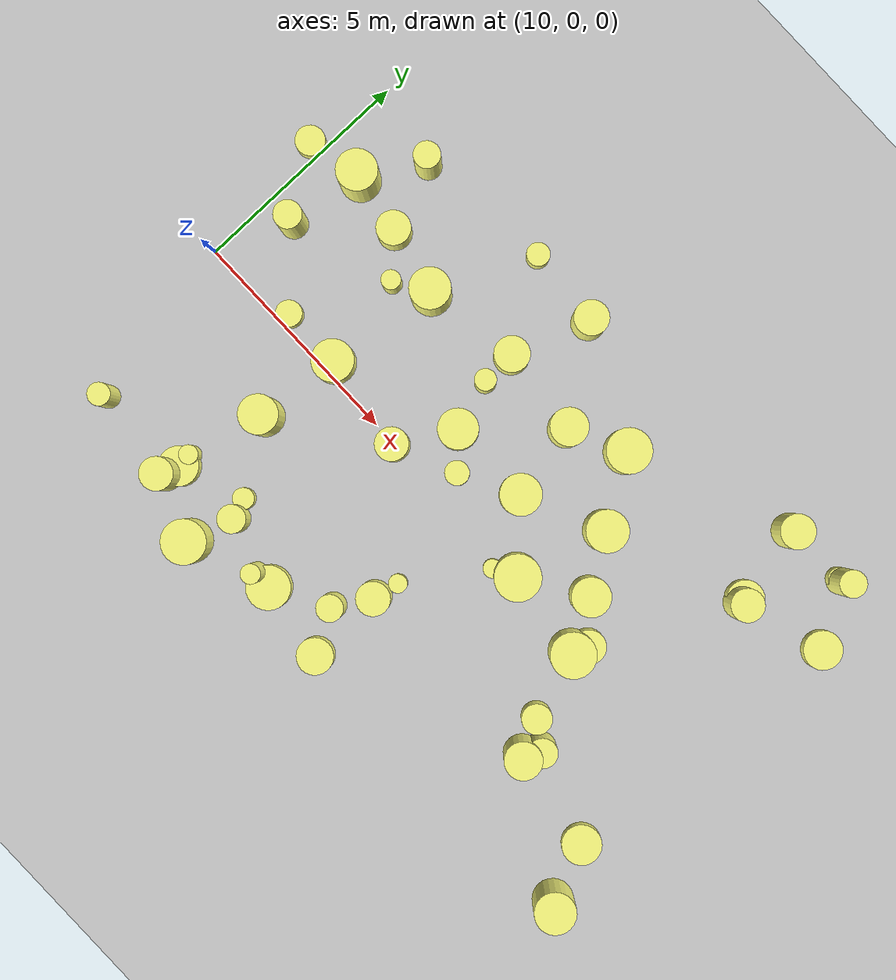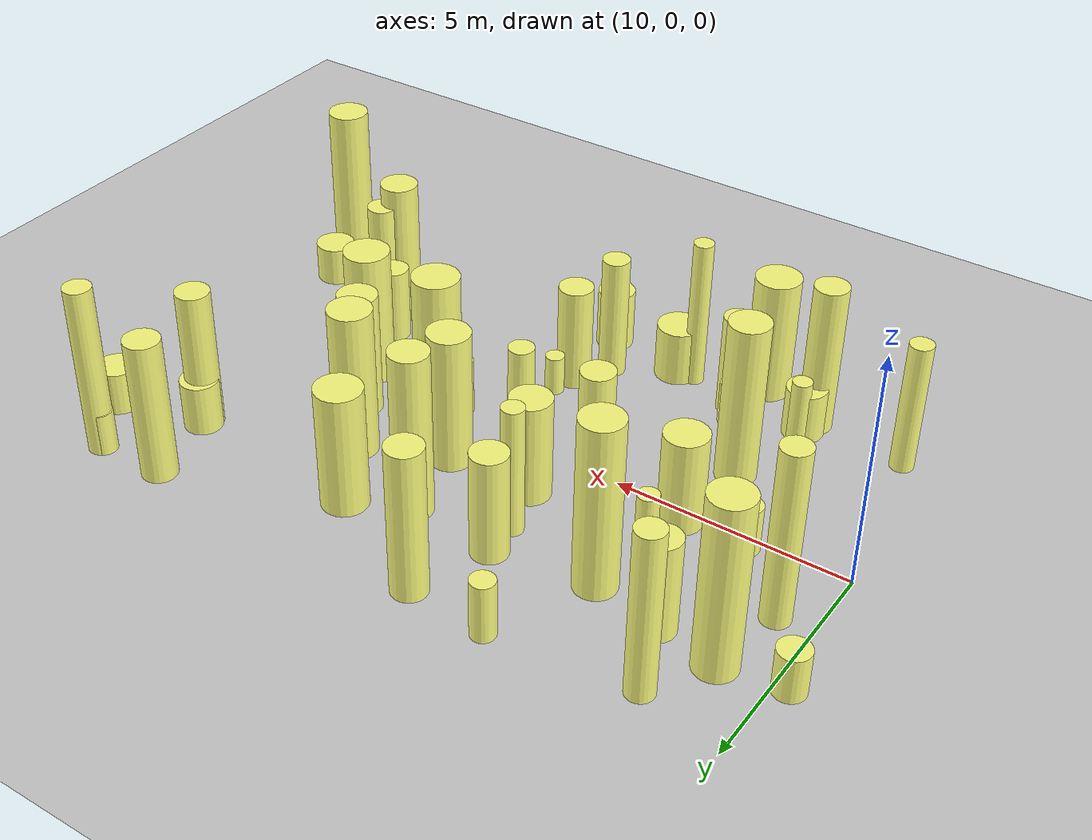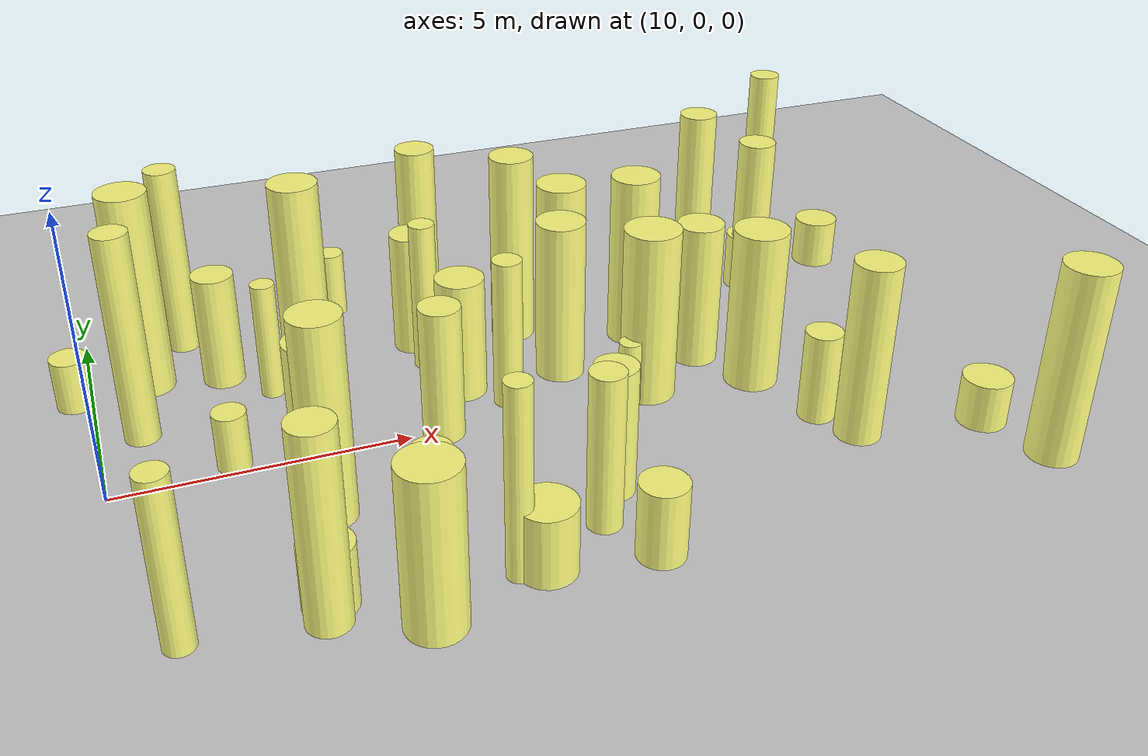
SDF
<sdf version="1.4">
 <world name="default">
  <include><uri>model://ground_plane</uri></include>
  <include><uri>model://sun</uri></include>
  <model name="forest">
   <static>true</static>
   <link name="cylinder1">
    <pose>12.798375393576244 -3.2828685525187096 0.7205334273208008 0 0 0</pose>
    <visual name="visual">
     <geometry>
      <cylinder><radius>0.2074521253241624</radius><length>1.4410668546416017</length></cylinder>
     </geometry>
     <material>
      <ambient>0.6 0.6 0.6 1</ambient>
      <diffuse>1 1 0.5 1</diffuse>
      <specular>0 0 0</specular>
      <emissive>0 0 0 1</emissive>
     </material>
    </visual>
    <collision name="collision">
     <geometry>
      <cylinder><radius>0.2074521253241624</radius><length>1.4410668546416017</length></cylinder>
     </geometry>
     <max_contacts>0</max_contacts>
    </collision>
   </link>
   <link name="cylinder3">
    <pose>12.063372315469614 0.259676773497171 0.5206927669625371 0 0 0</pose>
    <visual name="visual">
     <geometry>
      <cylinder><radius>0.2870176923711316</radius><length>1.0413855339250742</length></cylinder>
     </geometry>
     <material>
      <ambient>0.6 0.6 0.6 1</ambient>
      <diffuse>1 1 0.5 1</diffuse>
      <specular>0 0 0</specular>
      <emissive>0 0 0 1</emissive>
     </material>
    </visual>
    <collision name="collision">
     <geometry>
      <cylinder><radius>0.2870176923711316</radius><length>1.0413855339250742</length></cylinder>
     </geometry>
     <max_contacts>0</max_contacts>
    </collision>
   </link>
   <link name="cylinder9">
    <pose>16.92552058372282 0.5468688813929665 1.3953429441775678 0 0 0</pose>
    <visual name="visual">
     <geometry>
      <cylinder><radius>0.26180924563030633</radius><length>2.7906858883551355</length></cylinder>
     </geometry>
     <material>
      <ambient>0.6 0.6 0.6 1</ambient>
      <diffuse>1 1 0.5 1</diffuse>
      <specular>0 0 0</specular>
      <emissive>0 0 0 1</emissive>
     </material>
    </visual>
    <collision name="collision">
     <geometry>
      <cylinder><radius>0.26180924563030633</radius><length>2.7906858883551355</length></cylinder>
     </geometry>
     <max_contacts>0</max_contacts>
    </collision>
   </link>
   <link name="cylinder13">
    <pose>21.8047754650202 -1.7430730146435627 0.8334987781587296 0 0 0</pose>
    <visual name="visual">
     <geometry>
      <cylinder><radius>0.327413833274928</radius><length>1.6669975563174593</length></cylinder>
     </geometry>
     <material>
      <ambient>0.6 0.6 0.6 1</ambient>
      <diffuse>1 1 0.5 1</diffuse>
      <specular>0 0 0</specular>
      <emissive>0 0 0 1</emissive>
     </material>
    </visual>
    <collision name="collision">
     <geometry>
      <cylinder><radius>0.327413833274928</radius><length>1.6669975563174593</length></cylinder>
     </geometry>
     <max_contacts>0</max_contacts>
    </collision>
   </link>
   <link name="cylinder17">
    <pose>15.560407921322614 -0.032807102858358306 1.2310892919635181 0 0 0</pose>
    <visual name="visual">
     <geometry>
      <cylinder><radius>0.3613761600537685</radius><length>2.4621785839270363</length></cylinder>
     </geometry>
     <material>
      <ambient>0.6 0.6 0.6 1</ambient>
      <diffuse>1 1 0.5 1</diffuse>
      <specular>0 0 0</specular>
      <emissive>0 0 0 1</emissive>
     </material>
    </visual>
    <collision name="collision">
     <geometry>
      <cylinder><radius>0.3613761600537685</radius><length>2.4621785839270363</length></cylinder>
     </geometry>
     <max_contacts>0</max_contacts>
    </collision>
   </link>
   <link name="cylinder19">
    <pose>18.150752491414572 1.2028664458033589 1.512272726877565 0 0 0</pose>
    <visual name="visual">
     <geometry>
      <cylinder><radius>0.44529768430421035</radius><length>3.02454545375513</length></cylinder>
     </geometry>
     <material>
      <ambient>0.6 0.6 0.6 1</ambient>
      <diffuse>1 1 0.5 1</diffuse>
      <specular>0 0 0</specular>
      <emissive>0 0 0 1</emissive>
     </material>
    </visual>
    <collision name="collision">
     <geometry>
      <cylinder><radius>0.44529768430421035</radius><length>3.02454545375513</length></cylinder>
     </geometry>
     <max_contacts>0</max_contacts>
    </collision>
   </link>
   <link name="cylinder23">
    <pose>14.741480302558436 4.915428209651903 0.6339529873361176 0 0 0</pose>
    <visual name="visual">
     <geometry>
      <cylinder><radius>0.25261547616194646</radius><length>1.2679059746722352</length></cylinder>
     </geometry>
     <material>
      <ambient>0.6 0.6 0.6 1</ambient>
      <diffuse>1 1 0.5 1</diffuse>
      <specular>0 0 0</specular>
      <emissive>0 0 0 1</emissive>
     </material>
    </visual>
    <collision name="collision">
     <geometry>
      <cylinder><radius>0.25261547616194646</radius><length>1.2679059746722352</length></cylinder>
     </geometry>
     <max_contacts>0</max_contacts>
    </collision>
   </link>
   <link name="cylinder31">
    <pose>13.062057646591683 2.2853198517324413 1.0914935900410399 0 0 0</pose>
    <visual name="visual">
     <geometry>
      <cylinder><radius>0.2118241215187681</radius><length>2.1829871800820797</length></cylinder>
     </geometry>
     <material>
      <ambient>0.6 0.6 0.6 1</ambient>
      <diffuse>1 1 0.5 1</diffuse>
      <specular>0 0 0</specular>
      <emissive>0 0 0 1</emissive>
     </material>
    </visual>
    <collision name="collision">
     <geometry>
      <cylinder><radius>0.2118241215187681</radius><length>2.1829871800820797</length></cylinder>
     </geometry>
     <max_contacts>0</max_contacts>
    </collision>
   </link>
   <link name="cylinder34">
    <pose>15.546510192347114 -3.9565848857622 1.6730990246546018 0 0 0</pose>
    <visual name="visual">
     <geometry>
      <cylinder><radius>0.21259409692973114</radius><length>3.3461980493092036</length></cylinder>
     </geometry>
     <material>
      <ambient>0.6 0.6 0.6 1</ambient>
      <diffuse>1 1 0.5 1</diffuse>
      <specular>0 0 0</specular>
      <emissive>0 0 0 1</emissive>
     </material>
    </visual>
    <collision name="collision">
     <geometry>
      <cylinder><radius>0.21259409692973114</radius><length>3.3461980493092036</length></cylinder>
     </geometry>
     <max_contacts>0</max_contacts>
    </collision>
   </link>
   <link name="cylinder37">
    <pose>13.803841783484906 2.719741079920097 1.8922707779875454 0 0 0</pose>
    <visual name="visual">
     <geometry>
      <cylinder><radius>0.4399418925004805</radius><length>3.784541555975091</length></cylinder>
     </geometry>
     <material>
      <ambient>0.6 0.6 0.6 1</ambient>
      <diffuse>1 1 0.5 1</diffuse>
      <specular>0 0 0</specular>
      <emissive>0 0 0 1</emissive>
     </material>
    </visual>
    <collision name="collision">
     <geometry>
      <cylinder><radius>0.4399418925004805</radius><length>3.784541555975091</length></cylinder>
     </geometry>
     <max_contacts>0</max_contacts>
    </collision>
   </link>
   <link name="cylinder49">
    <pose>19.911399001283527 1.984378296164122 1.6543078820129575 0 0 0</pose>
    <visual name="visual">
     <geometry>
      <cylinder><radius>0.45252409833087914</radius><length>3.308615764025915</length></cylinder>
     </geometry>
     <material>
      <ambient>0.6 0.6 0.6 1</ambient>
      <diffuse>1 1 0.5 1</diffuse>
      <specular>0 0 0</specular>
      <emissive>0 0 0 1</emissive>
     </material>
    </visual>
    <collision name="collision">
     <geometry>
      <cylinder><radius>0.45252409833087914</radius><length>3.308615764025915</length></cylinder>
     </geometry>
     <max_contacts>0</max_contacts>
    </collision>
   </link>
   <link name="cylinder50">
    <pose>12.820054308634823 -3.6131848847389336 0.5532983006099305 0 0 0</pose>
    <visual name="visual">
     <geometry>
      <cylinder><radius>0.4285923523747316</radius><length>1.106596601219861</length></cylinder>
     </geometry>
     <material>
      <ambient>0.6 0.6 0.6 1</ambient>
      <diffuse>1 1 0.5 1</diffuse>
      <specular>0 0 0</specular>
      <emissive>0 0 0 1</emissive>
     </material>
    </visual>
    <collision name="collision">
     <geometry>
      <cylinder><radius>0.4285923523747316</radius><length>1.106596601219861</length></cylinder>
     </geometry>
     <max_contacts>0</max_contacts>
    </collision>
   </link>
   <link name="cylinder53">
    <pose>15.966680894167673 -3.977513217538229 0.608315524557464 0 0 0</pose>
    <visual name="visual">
     <geometry>
      <cylinder><radius>0.47815003727374855</radius><length>1.216631049114928</length></cylinder>
     </geometry>
     <material>
      <ambient>0.6 0.6 0.6 1</ambient>
      <diffuse>1 1 0.5 1</diffuse>
      <specular>0 0 0</specular>
      <emissive>0 0 0 1</emissive>
     </material>
    </visual>
    <collision name="collision">
     <geometry>
      <cylinder><radius>0.47815003727374855</radius><length>1.216631049114928</length></cylinder>
     </geometry>
     <max_contacts>0</max_contacts>
    </collision>
   </link>
   <link name="cylinder55">
    <pose>19.35300796469926 -0.010742455921862515 1.6084116401677482 0 0 0</pose>
    <visual name="visual">
     <geometry>
      <cylinder><radius>0.49839109911991186</radius><length>3.2168232803354964</length></cylinder>
     </geometry>
     <material>
      <ambient>0.6 0.6 0.6 1</ambient>
      <diffuse>1 1 0.5 1</diffuse>
      <specular>0 0 0</specular>
      <emissive>0 0 0 1</emissive>
     </material>
    </visual>
    <collision name="collision">
     <geometry>
      <cylinder><radius>0.49839109911991186</radius><length>3.2168232803354964</length></cylinder>
     </geometry>
     <max_contacts>0</max_contacts>
    </collision>
   </link>
   <link name="cylinder57">
    <pose>22.979318470903735 3.1595533759134007 0.5568627343252466 0 0 0</pose>
    <visual name="visual">
     <geometry>
      <cylinder><radius>0.40374525276902284</radius><length>1.1137254686504932</length></cylinder>
     </geometry>
     <material>
      <ambient>0.6 0.6 0.6 1</ambient>
      <diffuse>1 1 0.5 1</diffuse>
      <specular>0 0 0</specular>
      <emissive>0 0 0 1</emissive>
     </material>
    </visual>
    <collision name="collision">
     <geometry>
      <cylinder><radius>0.40374525276902284</radius><length>1.1137254686504932</length></cylinder>
     </geometry>
     <max_contacts>0</max_contacts>
    </collision>
   </link>
   <link name="cylinder58">
    <pose>13.448965398100412 0.25754666927384484 1.0422499404825736 0 0 0</pose>
    <visual name="visual">
     <geometry><cylinder><radius>0.455563397310082</radius><length>2.084499880965147</length></cylinder></geometry>
     <material>
      <ambient>0.6 0.6 0.6 1</ambient>
      <diffuse>1 1 0.5 1</diffuse>
      <specular>0 0 0</specular>
      <emissive>0 0 0 1</emissive>
     </material>
    </visual>
    <collision name="collision">
     <geometry><cylinder><radius>0.455563397310082</radius><length>2.084499880965147</length></cylinder></geometry>
     <max_contacts>0</max_contacts>
    </collision>
   </link>
   <link name="cylinder59">
    <pose>17.16560063845128 -3.2761251042104855 1.3736124516424832 0 0 0</pose>
    <visual name="visual">
     <geometry>
      <cylinder><radius>0.29030718758640445</radius><length>2.7472249032849665</length></cylinder>
     </geometry>
     <material>
      <ambient>0.6 0.6 0.6 1</ambient>
      <diffuse>1 1 0.5 1</diffuse>
      <specular>0 0 0</specular>
      <emissive>0 0 0 1</emissive>
     </material>
    </visual>
    <collision name="collision">
     <geometry>
      <cylinder><radius>0.29030718758640445</radius><length>2.7472249032849665</length></cylinder>
     </geometry>
     <max_contacts>0</max_contacts>
    </collision>
   </link>
   <link name="cylinder60">
    <pose>24.042414721158607 4.891987176605252 0.46764693379930466 0 0 0</pose>
    <visual name="visual">
     <geometry>
      <cylinder><radius>0.2573582179269475</radius><length>0.9352938675986093</length></cylinder>
     </geometry>
     <material>
      <ambient>0.6 0.6 0.6 1</ambient>
      <diffuse>1 1 0.5 1</diffuse>
      <specular>0 0 0</specular>
      <emissive>0 0 0 1</emissive>
     </material>
    </visual>
    <collision name="collision">
     <geometry>
      <cylinder><radius>0.2573582179269475</radius><length>0.9352938675986093</length></cylinder>
     </geometry>
     <max_contacts>0</max_contacts>
    </collision>
   </link>
   <link name="cylinder61">
    <pose>10.723658133326126 1.6267832777720095 1.922900118714382 0 0 0</pose>
    <visual name="visual">
     <geometry>
      <cylinder><radius>0.3027966859557885</radius><length>3.845800237428764</length></cylinder>
     </geometry>
     <material>
      <ambient>0.6 0.6 0.6 1</ambient>
      <diffuse>1 1 0.5 1</diffuse>
      <specular>0 0 0</specular>
      <emissive>0 0 0 1</emissive>
     </material>
    </visual>
    <collision name="collision">
     <geometry>
      <cylinder><radius>0.3027966859557885</radius><length>3.845800237428764</length></cylinder>
     </geometry>
     <max_contacts>0</max_contacts>
    </collision>
   </link>
   <link name="cylinder66">
    <pose>14.422473061724197 -3.517199043167254 1.1179780077262444 0 0 0</pose>
    <visual name="visual">
     <geometry>
      <cylinder><radius>0.3060664936479154</radius><length>2.235956015452489</length></cylinder>
     </geometry>
     <material>
      <ambient>0.6 0.6 0.6 1</ambient>
      <diffuse>1 1 0.5 1</diffuse>
      <specular>0 0 0</specular>
      <emissive>0 0 0 1</emissive>
     </material>
    </visual>
    <collision name="collision">
     <geometry>
      <cylinder><radius>0.3060664936479154</radius><length>2.235956015452489</length></cylinder>
     </geometry>
     <max_contacts>0</max_contacts>
    </collision>
   </link>
   <link name="cylinder67">
    <pose>16.493288628933392 4.739347453298151 1.6368067026585318 0 0 0</pose>
    <visual name="visual">
     <geometry>
      <cylinder><radius>0.3735794799401414</radius><length>3.2736134053170636</length></cylinder>
     </geometry>
     <material>
      <ambient>0.6 0.6 0.6 1</ambient>
      <diffuse>1 1 0.5 1</diffuse>
      <specular>0 0 0</specular>
      <emissive>0 0 0 1</emissive>
     </material>
    </visual>
    <collision name="collision">
     <geometry>
      <cylinder><radius>0.3735794799401414</radius><length>3.2736134053170636</length></cylinder>
     </geometry>
     <max_contacts>0</max_contacts>
    </collision>
   </link>
   <link name="cylinder68">
    <pose>14.238867295141738 -3.094489652258309 0.46872739438449473 0 0 0</pose>
    <visual name="visual">
     <geometry>
      <cylinder><radius>0.23550809806161369</radius><length>0.9374547887689895</length></cylinder>
     </geometry>
     <material>
      <ambient>0.6 0.6 0.6 1</ambient>
      <diffuse>1 1 0.5 1</diffuse>
      <specular>0 0 0</specular>
      <emissive>0 0 0 1</emissive>
     </material>
    </visual>
    <collision name="collision">
     <geometry>
      <cylinder><radius>0.23550809806161369</radius><length>0.9374547887689895</length></cylinder>
     </geometry>
     <max_contacts>0</max_contacts>
    </collision>
   </link>
   <link name="cylinder72">
    <pose>17.759001042036267 -1.948976955814862 0.4328211307759019 0 0 0</pose>
    <visual name="visual">
     <geometry>
      <cylinder><radius>0.20295277878997847</radius><length>0.8656422615518038</length></cylinder>
     </geometry>
     <material>
      <ambient>0.6 0.6 0.6 1</ambient>
      <diffuse>1 1 0.5 1</diffuse>
      <specular>0 0 0</specular>
      <emissive>0 0 0 1</emissive>
     </material>
    </visual>
    <collision name="collision">
     <geometry>
      <cylinder><radius>0.20295277878997847</radius><length>0.8656422615518038</length></cylinder>
     </geometry>
     <max_contacts>0</max_contacts>
    </collision>
   </link>
   <link name="cylinder75">
    <pose>15.926746817437007 2.2891096612865 1.4274229601544648 0 0 0</pose>
    <visual name="visual">
     <geometry>
      <cylinder><radius>0.23277276392159643</radius><length>2.8548459203089296</length></cylinder>
     </geometry>
     <material>
      <ambient>0.6 0.6 0.6 1</ambient>
      <diffuse>1 1 0.5 1</diffuse>
      <specular>0 0 0</specular>
      <emissive>0 0 0 1</emissive>
     </material>
    </visual>
    <collision name="collision">
     <geometry>
      <cylinder><radius>0.23277276392159643</radius><length>2.8548459203089296</length></cylinder>
     </geometry>
     <max_contacts>0</max_contacts>
    </collision>
   </link>
   <link name="cylinder80">
    <pose>9.71630206963485 3.066732799121718 0.48589714075867685 0 0 0</pose>
    <visual name="visual">
     <geometry>
      <cylinder><radius>0.3240534378655806</radius><length>0.9717942815173537</length></cylinder>
     </geometry>
     <material>
      <ambient>0.6 0.6 0.6 1</ambient>
      <diffuse>1 1 0.5 1</diffuse>
      <specular>0 0 0</specular>
      <emissive>0 0 0 1</emissive>
     </material>
    </visual>
    <collision name="collision">
     <geometry>
      <cylinder><radius>0.3240534378655806</radius><length>0.9717942815173537</length></cylinder>
     </geometry>
     <max_contacts>0</max_contacts>
    </collision>
   </link>
   <link name="cylinder86">
    <pose>24.877692846186832 -4.138840570635008 1.7696062864139352 0 0 0</pose>
    <visual name="visual">
     <geometry>
      <cylinder><radius>0.4428249947399171</radius><length>3.5392125728278705</length></cylinder>
     </geometry>
     <material>
      <ambient>0.6 0.6 0.6 1</ambient>
      <diffuse>1 1 0.5 1</diffuse>
      <specular>0 0 0</specular>
      <emissive>0 0 0 1</emissive>
     </material>
    </visual>
    <collision name="collision">
     <geometry>
      <cylinder><radius>0.4428249947399171</radius><length>3.5392125728278705</length></cylinder>
     </geometry>
     <max_contacts>0</max_contacts>
    </collision>
   </link>
   <link name="cylinder87">
    <pose>11.02152205281621 3.277447523228462 1.9044284389084387 0 0 0</pose>
    <visual name="visual">
     <geometry>
      <cylinder><radius>0.43991706991405366</radius><length>3.8088568778168774</length></cylinder>
     </geometry>
     <material>
      <ambient>0.6 0.6 0.6 1</ambient>
      <diffuse>1 1 0.5 1</diffuse>
      <specular>0 0 0</specular>
      <emissive>0 0 0 1</emissive>
     </material>
    </visual>
    <collision name="collision">
     <geometry>
      <cylinder><radius>0.43991706991405366</radius><length>3.8088568778168774</length></cylinder>
     </geometry>
     <max_contacts>0</max_contacts>
    </collision>
   </link>
   <link name="cylinder90">
    <pose>17.812605455693898 2.8692373550964154 1.8270390977230555 0 0 0</pose>
    <visual name="visual">
     <geometry>
      <cylinder><radius>0.40531642999180684</radius><length>3.654078195446111</length></cylinder>
     </geometry>
     <material>
      <ambient>0.6 0.6 0.6 1</ambient>
      <diffuse>1 1 0.5 1</diffuse>
      <specular>0 0 0</specular>
      <emissive>0 0 0 1</emissive>
     </material>
    </visual>
    <collision name="collision">
     <geometry>
      <cylinder><radius>0.40531642999180684</radius><length>3.654078195446111</length></cylinder>
     </geometry>
     <max_contacts>0</max_contacts>
    </collision>
   </link>
   <link name="cylinder92">
    <pose>18.886880546889962 -0.2774805413932988 0.6255202456347533 0 0 0</pose>
    <visual name="visual">
     <geometry>
      <cylinder><radius>0.2029261369738643</radius><length>1.2510404912695066</length></cylinder>
     </geometry>
     <material>
      <ambient>0.6 0.6 0.6 1</ambient>
      <diffuse>1 1 0.5 1</diffuse>
      <specular>0 0 0</specular>
      <emissive>0 0 0 1</emissive>
     </material>
    </visual>
    <collision name="collision">
     <geometry>
      <cylinder><radius>0.2029261369738643</radius><length>1.2510404912695066</length></cylinder>
     </geometry>
     <max_contacts>0</max_contacts>
    </collision>
   </link>
   <link name="cylinder95">
    <pose>10.699040633137635 -3.7235743360775118 1.4536124083045523 0 0 0</pose>
    <visual name="visual">
     <geometry>
      <cylinder><radius>0.2465406809583838</radius><length>2.9072248166091046</length></cylinder>
     </geometry>
     <material>
      <ambient>0.6 0.6 0.6 1</ambient>
      <diffuse>1 1 0.5 1</diffuse>
      <specular>0 0 0</specular>
      <emissive>0 0 0 1</emissive>
     </material>
    </visual>
    <collision name="collision">
     <geometry>
      <cylinder><radius>0.2465406809583838</radius><length>2.9072248166091046</length></cylinder>
     </geometry>
     <max_contacts>0</max_contacts>
    </collision>
   </link>
   <link name="cylinder97">
    <pose>22.34785393862689 -2.1064089206961487 1.421973912763073 0 0 0</pose>
    <visual name="visual">
     <geometry>
      <cylinder><radius>0.3152812990797616</radius><length>2.843947825526146</length></cylinder>
     </geometry>
     <material>
      <ambient>0.6 0.6 0.6 1</ambient>
      <diffuse>1 1 0.5 1</diffuse>
      <specular>0 0 0</specular>
      <emissive>0 0 0 1</emissive>
     </material>
    </visual>
    <collision name="collision">
     <geometry>
      <cylinder><radius>0.3152812990797616</radius><length>2.843947825526146</length></cylinder>
     </geometry>
     <max_contacts>0</max_contacts>
    </collision>
   </link>
   <link name="cylinder100">
    <pose>21.304587892615245 -0.26807400460474895 1.5003024430246192 0 0 0</pose>
    <visual name="visual">
     <geometry>
      <cylinder><radius>0.4879195177241493</radius><length>3.0006048860492385</length></cylinder>
     </geometry>
     <material>
      <ambient>0.6 0.6 0.6 1</ambient>
      <diffuse>1 1 0.5 1</diffuse>
      <specular>0 0 0</specular>
      <emissive>0 0 0 1</emissive>
     </material>
    </visual>
    <collision name="collision">
     <geometry>
      <cylinder><radius>0.4879195177241493</radius><length>3.0006048860492385</length></cylinder>
     </geometry>
     <max_contacts>0</max_contacts>
    </collision>
   </link>
   <link name="cylinder104">
    <pose>15.90454576428506 3.062623272399346 1.1637102246399138 0 0 0</pose>
    <visual name="visual">
     <geometry>
      <cylinder><radius>0.38492784661547175</radius><length>2.3274204492798276</length></cylinder>
     </geometry>
     <material>
      <ambient>0.6 0.6 0.6 1</ambient>
      <diffuse>1 1 0.5 1</diffuse>
      <specular>0 0 0</specular>
      <emissive>0 0 0 1</emissive>
     </material>
    </visual>
    <collision name="collision">
     <geometry>
      <cylinder><radius>0.38492784661547175</radius><length>2.3274204492798276</length></cylinder>
     </geometry>
     <max_contacts>0</max_contacts>
    </collision>
   </link>
   <link name="cylinder105">
    <pose>19.024160164465115 3.4565457660130647 1.3450979071276035 0 0 0</pose>
    <visual name="visual">
     <geometry>
      <cylinder><radius>0.4849783306959874</radius><length>2.690195814255207</length></cylinder>
     </geometry>
     <material>
      <ambient>0.6 0.6 0.6 1</ambient>
      <diffuse>1 1 0.5 1</diffuse>
      <specular>0 0 0</specular>
      <emissive>0 0 0 1</emissive>
     </material>
    </visual>
    <collision name="collision">
     <geometry>
      <cylinder><radius>0.4849783306959874</radius><length>2.690195814255207</length></cylinder>
     </geometry>
     <max_contacts>0</max_contacts>
    </collision>
   </link>
   <link name="cylinder107">
    <pose>17.682355251107857 -4.2420142202133455 0.6575811518214989 0 0 0</pose>
    <visual name="visual">
     <geometry>
      <cylinder><radius>0.39649065871821776</radius><length>1.3151623036429978</length></cylinder>
     </geometry>
     <material>
      <ambient>0.6 0.6 0.6 1</ambient>
      <diffuse>1 1 0.5 1</diffuse>
      <specular>0 0 0</specular>
      <emissive>0 0 0 1</emissive>
     </material>
    </visual>
    <collision name="collision">
     <geometry>
      <cylinder><radius>0.39649065871821776</radius><length>1.3151623036429978</length></cylinder>
     </geometry>
     <max_contacts>0</max_contacts>
    </collision>
   </link>
   <link name="cylinder110">
    <pose>22.99542352262793 3.047054479402938 1.5695371057985144 0 0 0</pose>
    <visual name="visual">
     <geometry>
      <cylinder><radius>0.3574228615656392</radius><length>3.1390742115970287</length></cylinder>
     </geometry>
     <material>
      <ambient>0.6 0.6 0.6 1</ambient>
      <diffuse>1 1 0.5 1</diffuse>
      <specular>0 0 0</specular>
      <emissive>0 0 0 1</emissive>
     </material>
    </visual>
    <collision name="collision">
     <geometry>
      <cylinder><radius>0.3574228615656392</radius><length>3.1390742115970287</length></cylinder>
     </geometry>
     <max_contacts>0</max_contacts>
    </collision>
   </link>
   <link name="cylinder112">
    <pose>21.448052848509683 0.08164276372938595 0.8795423548641006 0 0 0</pose>
    <visual name="visual">
     <geometry>
      <cylinder><radius>0.36205339921533175</radius><length>1.7590847097282012</length></cylinder>
     </geometry>
     <material>
      <ambient>0.6 0.6 0.6 1</ambient>
      <diffuse>1 1 0.5 1</diffuse>
      <specular>0 0 0</specular>
      <emissive>0 0 0 1</emissive>
     </material>
    </visual>
    <collision name="collision">
     <geometry>
      <cylinder><radius>0.36205339921533175</radius><length>1.7590847097282012</length></cylinder>
     </geometry>
     <max_contacts>0</max_contacts>
    </collision>
   </link>
   <link name="cylinder116">
    <pose>11.767261906542942 4.5411467268455485 1.804302949684901 0 0 0</pose>
    <visual name="visual">
     <geometry>
      <cylinder><radius>0.28850975067350576</radius><length>3.608605899369802</length></cylinder>
     </geometry>
     <material>
      <ambient>0.6 0.6 0.6 1</ambient>
      <diffuse>1 1 0.5 1</diffuse>
      <specular>0 0 0</specular>
      <emissive>0 0 0 1</emissive>
     </material>
    </visual>
    <collision name="collision">
     <geometry>
      <cylinder><radius>0.28850975067350576</radius><length>3.608605899369802</length></cylinder>
     </geometry>
     <max_contacts>0</max_contacts>
    </collision>
   </link>
   <link name="cylinder117">
    <pose>24.108440009627436 4.8992256211108085 1.8944358806903752 0 0 0</pose>
    <visual name="visual">
     <geometry>
      <cylinder><radius>0.2899576562236283</radius><length>3.7888717613807503</length></cylinder>
     </geometry>
     <material>
      <ambient>0.6 0.6 0.6 1</ambient>
      <diffuse>1 1 0.5 1</diffuse>
      <specular>0 0 0</specular>
      <emissive>0 0 0 1</emissive>
     </material>
    </visual>
    <collision name="collision">
     <geometry>
      <cylinder><radius>0.2899576562236283</radius><length>3.7888717613807503</length></cylinder>
     </geometry>
     <max_contacts>0</max_contacts>
    </collision>
   </link>
   <link name="cylinder120">
    <pose>20.691128496105968 0.8187293868477994 1.3686986517408781 0 0 0</pose>
    <visual name="visual">
     <geometry>
      <cylinder><radius>0.4218393034068314</radius><length>2.7373973034817562</length></cylinder>
     </geometry>
     <material>
      <ambient>0.6 0.6 0.6 1</ambient>
      <diffuse>1 1 0.5 1</diffuse>
      <specular>0 0 0</specular>
      <emissive>0 0 0 1</emissive>
     </material>
    </visual>
    <collision name="collision">
     <geometry>
      <cylinder><radius>0.4218393034068314</radius><length>2.7373973034817562</length></cylinder>
     </geometry>
     <max_contacts>0</max_contacts>
    </collision>
   </link>
   <link name="cylinder122">
    <pose>24.88372469588859 3.612808997699764 0.47590007193729744 0 0 0</pose>
    <visual name="visual">
     <geometry>
      <cylinder><radius>0.4196971615158827</radius><length>0.9518001438745949</length></cylinder>
     </geometry>
     <material>
      <ambient>0.6 0.6 0.6 1</ambient>
      <diffuse>1 1 0.5 1</diffuse>
      <specular>0 0 0</specular>
      <emissive>0 0 0 1</emissive>
     </material>
    </visual>
    <collision name="collision">
     <geometry>
      <cylinder><radius>0.4196971615158827</radius><length>0.9518001438745949</length></cylinder>
     </geometry>
     <max_contacts>0</max_contacts>
    </collision>
   </link>
   <link name="cylinder124">
    <pose>24.406497538891372 -2.879144484604319 0.4391905267039065 0 0 0</pose>
    <visual name="visual">
     <geometry>
      <cylinder><radius>0.4294708391964494</radius><length>0.878381053407813</length></cylinder>
     </geometry>
     <material>
      <ambient>0.6 0.6 0.6 1</ambient>
      <diffuse>1 1 0.5 1</diffuse>
      <specular>0 0 0</specular>
      <emissive>0 0 0 1</emissive>
     </material>
    </visual>
    <collision name="collision">
     <geometry>
      <cylinder><radius>0.4294708391964494</radius><length>0.878381053407813</length></cylinder>
     </geometry>
     <max_contacts>0</max_contacts>
    </collision>
   </link>
   <link name="cylinder126">
    <pose>16.27004305286762 1.1882339476169026 1.132484073614898 0 0 0</pose>
    <visual name="visual">
     <geometry>
      <cylinder><radius>0.43628210329077444</radius><length>2.264968147229796</length></cylinder>
     </geometry>
     <material>
      <ambient>0.6 0.6 0.6 1</ambient>
      <diffuse>1 1 0.5 1</diffuse>
      <specular>0 0 0</specular>
      <emissive>0 0 0 1</emissive>
     </material>
    </visual>
    <collision name="collision">
     <geometry>
      <cylinder><radius>0.43628210329077444</radius><length>2.264968147229796</length></cylinder>
     </geometry>
     <max_contacts>0</max_contacts>
    </collision>
   </link>
   <link name="cylinder127">
    <pose>22.168663627292425 -2.4933973155834166 1.6403458735062058 0 0 0</pose>
    <visual name="visual">
     <geometry>
      <cylinder><radius>0.40416859951099093</radius><length>3.2806917470124115</length></cylinder>
     </geometry>
     <material>
      <ambient>0.6 0.6 0.6 1</ambient>
      <diffuse>1 1 0.5 1</diffuse>
      <specular>0 0 0</specular>
      <emissive>0 0 0 1</emissive>
     </material>
    </visual>
    <collision name="collision">
     <geometry>
      <cylinder><radius>0.40416859951099093</radius><length>3.2806917470124115</length></cylinder>
     </geometry>
     <max_contacts>0</max_contacts>
    </collision>
   </link>
   <link name="cylinder131">
    <pose>12.308289134120493 3.0603501982604833 1.063902691051445 0 0 0</pose>
    <visual name="visual">
     <geometry><cylinder><radius>0.3716232540033543</radius><length>2.12780538210289</length></cylinder></geometry>
     <material>
      <ambient>0.6 0.6 0.6 1</ambient>
      <diffuse>1 1 0.5 1</diffuse>
      <specular>0 0 0</specular>
      <emissive>0 0 0 1</emissive>
     </material>
    </visual>
    <collision name="collision">
     <geometry><cylinder><radius>0.3716232540033543</radius><length>2.12780538210289</length></cylinder></geometry>
     <max_contacts>0</max_contacts>
    </collision>
   </link>
   <link name="cylinder134">
    <pose>16.179659759415884 1.1806308089700455 0.8677246309420745 0 0 0</pose>
    <visual name="visual">
     <geometry>
      <cylinder><radius>0.3206236128135789</radius><length>1.735449261884149</length></cylinder>
     </geometry>
     <material>
      <ambient>0.6 0.6 0.6 1</ambient>
      <diffuse>1 1 0.5 1</diffuse>
      <specular>0 0 0</specular>
      <emissive>0 0 0 1</emissive>
     </material>
    </visual>
    <collision name="collision">
     <geometry>
      <cylinder><radius>0.3206236128135789</radius><length>1.735449261884149</length></cylinder>
     </geometry>
     <max_contacts>0</max_contacts>
    </collision>
   </link>
   <link name="cylinder136">
    <pose>22.595461631221497 4.835747551702044 1.5761392940668377 0 0 0</pose>
    <visual name="visual">
     <geometry>
      <cylinder><radius>0.3741170896107473</radius><length>3.1522785881336755</length></cylinder>
     </geometry>
     <material>
      <ambient>0.6 0.6 0.6 1</ambient>
      <diffuse>1 1 0.5 1</diffuse>
      <specular>0 0 0</specular>
      <emissive>0 0 0 1</emissive>
     </material>
    </visual>
    <collision name="collision">
     <geometry>
      <cylinder><radius>0.3741170896107473</radius><length>3.1522785881336755</length></cylinder>
     </geometry>
     <max_contacts>0</max_contacts>
    </collision>
   </link>
   <link name="cylinder141">
    <pose>12.722133433274713 -3.962057613331752 1.671091919145554 0 0 0</pose>
    <visual name="visual">
     <geometry>
      <cylinder><radius>0.3588330516606161</radius><length>3.342183838291108</length></cylinder>
     </geometry>
     <material>
      <ambient>0.6 0.6 0.6 1</ambient>
      <diffuse>1 1 0.5 1</diffuse>
      <specular>0 0 0</specular>
      <emissive>0 0 0 1</emissive>
     </material>
    </visual>
    <collision name="collision">
     <geometry>
      <cylinder><radius>0.3588330516606161</radius><length>3.342183838291108</length></cylinder>
     </geometry>
     <max_contacts>0</max_contacts>
    </collision>
   </link>
   <link name="cylinder147">
    <pose>13.27296142883717 -1.6017677721091275 1.790209351862044 0 0 0</pose>
    <visual name="visual">
     <geometry>
      <cylinder><radius>0.42388365195793914</radius><length>3.580418703724088</length></cylinder>
     </geometry>
     <material>
      <ambient>0.6 0.6 0.6 1</ambient>
      <diffuse>1 1 0.5 1</diffuse>
      <specular>0 0 0</specular>
      <emissive>0 0 0 1</emissive>
     </material>
    </visual>
    <collision name="collision">
     <geometry>
      <cylinder><radius>0.42388365195793914</radius><length>3.580418703724088</length></cylinder>
     </geometry>
     <max_contacts>0</max_contacts>
    </collision>
   </link>
   <link name="cylinder148">
    <pose>14.10616923823325 -4.54051710050626 1.379274513257623 0 0 0</pose>
    <visual name="visual">
     <geometry>
      <cylinder><radius>0.4819805542199718</radius><length>2.758549026515246</length></cylinder>
     </geometry>
     <material>
      <ambient>0.6 0.6 0.6 1</ambient>
      <diffuse>1 1 0.5 1</diffuse>
      <specular>0 0 0</specular>
      <emissive>0 0 0 1</emissive>
     </material>
    </visual>
    <collision name="collision">
     <geometry>
      <cylinder><radius>0.4819805542199718</radius><length>2.758549026515246</length></cylinder>
     </geometry>
     <max_contacts>0</max_contacts>
    </collision>
   </link>
   <link name="cylinder149">
    <pose>17.635667683902078 -2.5047219412705726 1.1541069062076281 0 0 0</pose>
    <visual name="visual">
     <geometry>
      <cylinder><radius>0.36640739848053017</radius><length>2.3082138124152562</length></cylinder>
     </geometry>
     <material>
      <ambient>0.6 0.6 0.6 1</ambient>
      <diffuse>1 1 0.5 1</diffuse>
      <specular>0 0 0</specular>
      <emissive>0 0 0 1</emissive>
     </material>
    </visual>
    <collision name="collision">
     <geometry>
      <cylinder><radius>0.36640739848053017</radius><length>2.3082138124152562</length></cylinder>
     </geometry>
     <max_contacts>0</max_contacts>
    </collision>
   </link>
  </model>
 </world>
</sdf>
